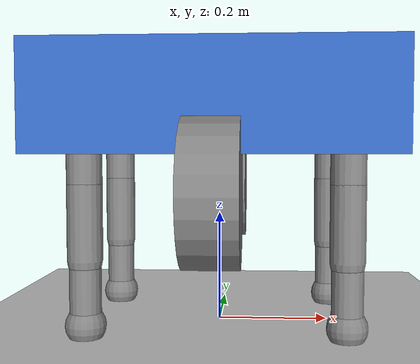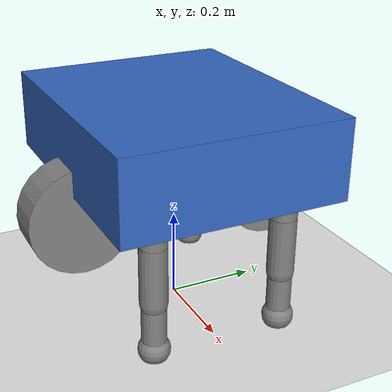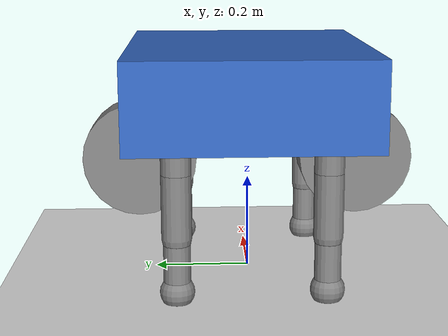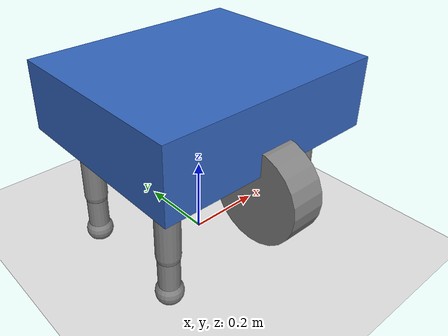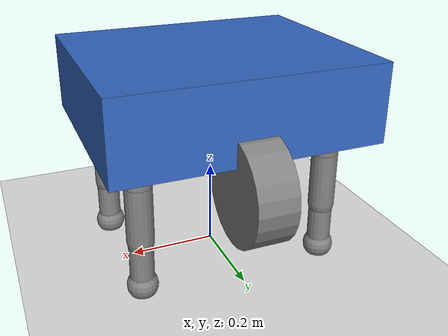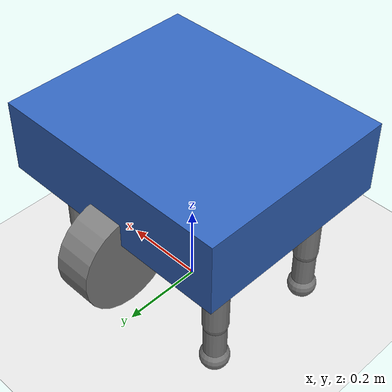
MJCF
<mujoco model="hybrid_robot">
    <compiler angle="degree" coordinate="local"/>
    <option gravity="0 0 -9.81" timestep="0.004"/>

    <default>
        <joint damping="2" armature="0.01"/>
        <geom density="600" friction="1.2 0.02 0.002"/>
    </default>

    <worldbody>

        <!-- Ground -->
        <geom type="plane" size="30 30 0.2" rgba="0.9 0.9 0.9 1"/>

        <!--     BODY ELEVATION JOINT              -->
        <body name="body_elevator" pos="0 0 0.40">
            <joint name="elevate" type="slide" axis="0 0 1" range="-0.10 0.12"/>

            <!-- ================= TORSO ================= -->
            <body name="torso" pos="0 0 0">
                <geom type="box" size="0.30 0.25 0.09" rgba="0.2 0.4 0.75 1"/>

                <!--                 WHEELS              -->

                <!-- أصبحت مرتفعة شوي: -0.22 -> -0.15 -->
                <body name="wheel_left_body" pos="0 0.23 -0.15">
                    <joint name="wheel_left_joint" type="hinge" axis="1 0 0"/>
                    <geom type="cylinder" size="0.12 0.045" euler="0 -90 0"
                          friction="1.2 0.01 0.001"/>
                </body>

                <body name="wheel_right_body" pos="0 -0.23 -0.15">
                    <joint name="wheel_right_joint" type="hinge" axis="1 0 0"/>
                    <geom type="cylinder" size="0.12 0.045" euler="0 -90 0"
                          friction="1.2 0.01 0.001"/>
                </body>

                <!--                     LEGS             -->

                <!-- FRONT LEFT -->
                <body name="leg_fl" pos="0.22 0.15 0">
                    <joint name="hip1_fl" type="hinge" axis="0 1 0" range="-35 35"/>
                    <geom type="capsule" fromto="0 0 0 0 0 -0.14" size="0.03"/>

                    <body pos="0 0 -0.14">
                        <joint name="hip2_fl" type="hinge" axis="1 0 0" range="-50 50"/>
                        <geom type="capsule" fromto="0 0 0 0 0 -0.13" size="0.03"/>

                        <body pos="0 0 -0.13">
                            <joint name="knee_fl" type="hinge" axis="1 0 0" range="-110 15"/>
                            <geom type="capsule" fromto="0 0 0 0 0 -0.11" size="0.027"/>

                            <body pos="0 0 -0.11">
                                <joint name="ankle_fl" type="hinge" axis="1 0 0" range="-40 40"/>
                                <geom type="sphere" size="0.035"/>
                            </body>
                        </body>
                    </body>
                </body>

                <!-- FRONT RIGHT -->
                <body name="leg_fr" pos="0.22 -0.15 0">
                    <joint name="hip1_fr" type="hinge" axis="0 1 0" range="-35 35"/>
                    <geom type="capsule" fromto="0 0 0 0 0 -0.14" size="0.03"/>

                    <body pos="0 0 -0.14">
                        <joint name="hip2_fr" type="hinge" axis="1 0 0" range="-50 50"/>
                        <geom type="capsule" fromto="0 0 0 0 0 -0.13" size="0.03"/>

                        <body pos="0 0 -0.13">
                            <joint name="knee_fr" type="hinge" axis="1 0 0" range="-110 15"/>
                            <geom type="capsule" fromto="0 0 0 0 0 -0.11" size="0.027"/>

                            <body pos="0 0 -0.11">
                                <joint name="ankle_fr" type="hinge" axis="1 0 0" range="-40 40"/>
                                <geom type="sphere" size="0.035"/>
                            </body>
                        </body>
                    </body>
                </body>

                <!-- BACK LEFT -->
                <body name="leg_bl" pos="-0.22 0.15 0">
                    <joint name="hip1_bl" type="hinge" axis="0 1 0" range="-35 35"/>
                    <geom type="capsule" fromto="0 0 0 0 0 -0.14" size="0.03"/>

                    <body pos="0 0 -0.14">
                        <joint name="hip2_bl" type="hinge" axis="1 0 0" range="-50 50"/>
                        <geom type="capsule" fromto="0 0 0 0 0 -0.13" size="0.03"/>

                        <body pos="0 0 -0.13">
                            <joint name="knee_bl" type="hinge" axis="1 0 0" range="-110 15"/>
                            <geom type="capsule" fromto="0 0 0 0 0 -0.11" size="0.027"/>

                            <body pos="0 0 -0.11">
                                <joint name="ankle_bl" type="hinge" axis="1 0 0" range="-40 40"/>
                                <geom type="sphere" size="0.035"/>
                            </body>
                        </body>
                    </body>
                </body>

                <!-- BACK RIGHT -->
                <body name="leg_br" pos="-0.22 -0.15 0">
                    <joint name="hip1_br" type="hinge" axis="0 1 0" range="-35 35"/>
                    <geom type="capsule" fromto="0 0 0 0 0 -0.14" size="0.03"/>

                    <body pos="0 0 -0.14">
                        <joint name="hip2_br" type="hinge" axis="1 0 0" range="-50 50"/>
                        <geom type="capsule" fromto="0 0 0 0 0 -0.13" size="0.03"/>

                        <body pos="0 0 -0.13">
                            <joint name="knee_br" type="hinge" axis="1 0 0" range="-110 15"/>
                            <geom type="capsule" fromto="0 0 0 0 0 -0.11" size="0.027"/>

                            <body pos="0 0 -0.11">
                                <joint name="ankle_br" type="hinge" axis="1 0 0" range="-40 40"/>
                                <geom type="sphere" size="0.035"/>
                            </body>
                        </body>
                    </body>
                </body>

            </body>
        </body>
    </worldbody>

    <!-- ===================== ACTUATORS ===================== -->
    <actuator>

        <position name="lift" joint="elevate" kp="300"/>

        <motor name="m_wheel_left" joint="wheel_left_joint" gear="1" ctrlrange="-700 700"/>
        <motor name="m_wheel_right" joint="wheel_right_joint" gear="1" ctrlrange="-700 700"/>

        <position name="m_hip1_fl" joint="hip1_fl" kp="180"/>
        <position name="m_hip2_fl" joint="hip2_fl" kp="200"/>
        <position name="m_knee_fl" joint="knee_fl" kp="260"/>
        <position name="m_ankle_fl" joint="ankle_fl" kp="160"/>

        <position name="m_hip1_fr" joint="hip1_fr" kp="180"/>
        <position name="m_hip2_fr" joint="hip2_fr" kp="200"/>
        <position name="m_knee_fr" joint="knee_fr" kp="260"/>
        <position name="m_ankle_fr" joint="ankle_fr" kp="160"/>

        <position name="m_hip1_bl" joint="hip1_bl" kp="180"/>
        <position name="m_hip2_bl" joint="hip2_bl" kp="200"/>
        <position name="m_knee_bl" joint="knee_bl" kp="260"/>
        <position name="m_ankle_bl" joint="ankle_bl" kp="160"/>

        <position name="m_hip1_br" joint="hip1_br" kp="180"/>
        <position name="m_hip2_br" joint="hip2_br" kp="200"/>
        <position name="m_knee_br" joint="knee_br" kp="260"/>
        <position name="m_ankle_br" joint="ankle_br" kp="160"/>

    </actuator>

</mujoco>
